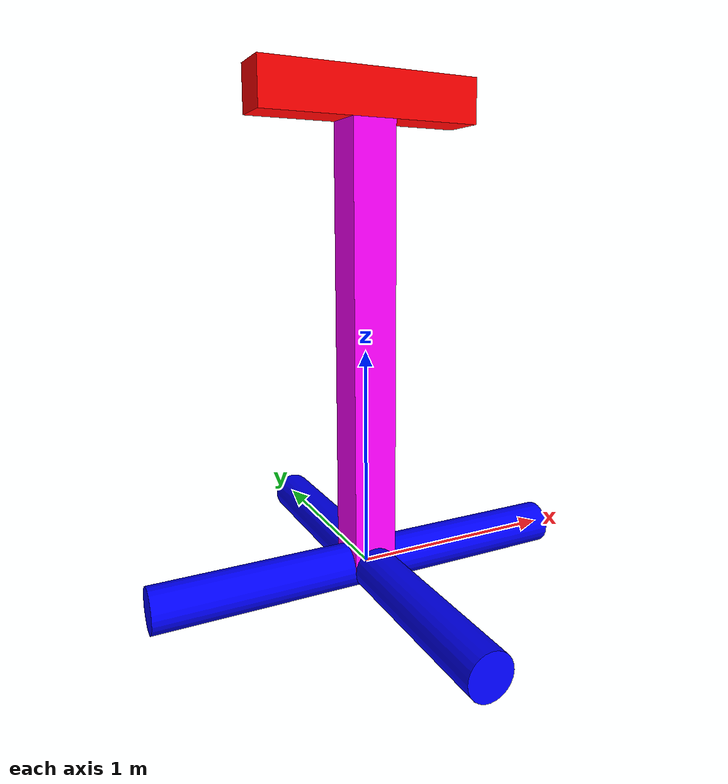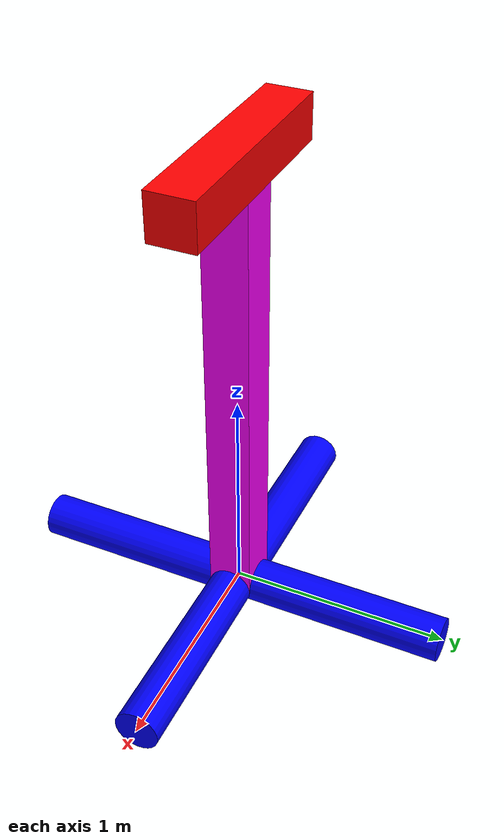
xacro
<?xml version="1.0"?>
<robot xmlns:xacro="http://www.ros.org/wiki/xacro"  name="robot">
    <!-- This will include all the contents of example_include.xacro first -->
    <xacro:include filename="colors.xacro" />
    <xacro:include filename="inertial.xacro" />

    <!-- This first link called "world" is empty -->
    <link name="world"></link>

    <!-- A simple fixed joint from our empty world link, to our base.
         The base origin is offset from the world origin. -->
    <joint name="cylinder1" type="fixed">
        <origin xyz="0 0 0" rpy="0 0 0"/>
        <parent link="world"/>
        <child link="cylinder1_link"/>
    </joint>

    <xacro:property name="cylinder_length" value="2" />
    <xacro:property name="cylinder_radius" value="0.1" />

    <link name="cylinder1_link">
        <visual>
            <origin xyz="0 0 0" rpy="0 ${pi/2} 0"/>
            <geometry>
                <cylinder length="${cylinder_length}" radius="${cylinder_radius}" />
            </geometry>
            <material name="blue" />
        </visual>
        <collision>
            <origin xyz="0 0 0" rpy="0 ${pi/2} 0"/>
            <geometry>
                <cylinder length="${cylinder_length}" radius="${cylinder_radius}" />
            </geometry>
        </collision>
        <xacro:inertial_cylinder mass="1.0" length="${cylinder_length}"
            radius="${cylinder_radius}">
            <origin xyz="0 0 0" rpy="0 ${pi/2} 0"/>
        </xacro:inertial_cylinder>
    </link>

    <joint name="cylinder2" type="fixed">
        <origin xyz="0 0 0" rpy="0 0 0"/>
        <parent link="world"/>
        <child link="cylinder2_link"/>
    </joint>

    <link name="cylinder2_link">
        <visual>
            <origin xyz="0 0 0" rpy="${pi/2} ${pi/2} 0"/>
            <geometry>
                <cylinder length="${cylinder_length}" radius="${cylinder_radius}" />
            </geometry>
            <material name="blue" />
        </visual>
        <collision>
            <origin xyz="0 0 0" rpy="${pi/2} ${pi/2} 0"/>
            <geometry>
                <cylinder length="${cylinder_length}" radius="${cylinder_radius}" />
            </geometry>
        </collision>
        <xacro:inertial_cylinder mass="1.0" length="${cylinder_length}"
            radius="${cylinder_radius}">
            <origin xyz="0 0 0" rpy="${pi/2} ${pi/2} 0"/>
        </xacro:inertial_cylinder>
    </link>

    <joint name="shaft" type="revolute">
        <origin xyz="0 0 0" rpy="0 0 0"/>
        <parent link="world"/>
        <child link="shaft_link"/>
        <axis xyz="0 0 1"/>
        <limit lower="0" upper="${2*pi}" velocity="100" effort="100"/>
    </joint>

    <xacro:property name="shaft_side_length" value="0.2" />
    <xacro:property name="shaft_height" value="2"/>

    <link name="shaft_link">
        <visual>
            <origin xyz="0 0 ${shaft_height/2}" rpy="0 0 0"/>
            <geometry>
                <box size="${shaft_side_length} ${shaft_side_length} ${shaft_height}"/>
            </geometry>
            <material name="magenta"/>
        </visual>
        <collision>
            <origin xyz="0 0 ${shaft_height/2}" rpy="0 0 0"/>
            <geometry>
                <box size="${shaft_side_length} ${shaft_side_length} ${shaft_height}"/>
            </geometry>
        </collision>
        <xacro:inertial_box mass="0.1" x="${shaft_side_length/2}" y="${shaft_side_length/2}" z="${shaft_height/2}">
            <origin xyz="0.0 0 0" rpy="0 0 0"/>
        </xacro:inertial_box>
    </link>

    <xacro:property name="topshaft_side_length" value="0.2" />
    <xacro:property name="topshaft_height" value="1"/>

    <joint name="topshaft" type="prismatic">
        <origin xyz="0 0 ${shaft_height+(topshaft_side_length/2)}" rpy="0 0 0"/>
        <parent link="shaft_link"/>
        <child link="topshaft_link"/>
        <axis xyz="1 0 0"/>
        <limit lower="${-(topshaft_height/2-0.2)}" upper="${topshaft_height/2-0.2}" velocity="100" effort="100"/>
    </joint>

    <link name="topshaft_link">
        <visual>
            <origin xyz="0 0 0" rpy="0 ${pi/2} 0"/>
            <geometry>
                <box size="${topshaft_side_length} ${topshaft_side_length} ${topshaft_height}"/>
            </geometry>
            <material name="red"/>
        </visual>
        <collision>
            <origin xyz="0 0 ${shaft_height}" rpy="0 ${pi/2} 0"/>
            <geometry>
                <box size="${topshaft_side_length} ${topshaft_side_length} ${topshaft_height}"/>
            </geometry>
        </collision>
        <xacro:inertial_box mass="0.1" x="${topshaft_side_length/2}" y="${topshaft_side_length/2}" z="${topshaft_height/2}">
            <origin xyz="0.0 0 0" rpy="0 ${pi/2} 0"/>
        </xacro:inertial_box>
    </link>
</robot>

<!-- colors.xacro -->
<robot xmlns:xacro="http://www.ros.org/wiki/xacro" >
    <!-- Red -->
    <material name="red">
        <color rgba="1 0 0 1"/>
    </material>
    <!-- Green -->
    <material name="green">
        <color rgba="0 1 0 1"/>
    </material>
    <!-- Blue -->
    <material name="blue">
        <color rgba="0 0 1 1"/>
    </material>
    <!-- Yellow -->
    <material name="yellow">
        <color rgba="1 1 0 1"/>
    </material>
    <!-- Magenta -->
    <material name="magenta">
        <color rgba="1 0 1 1"/>
    </material>
    <!-- Cyan -->
    <material name="cyan">
        <color rgba="0 1 1 1"/>
    </material>
    <!-- White -->
    <material name="white">
        <color rgba="1 1 1 1"/>
    </material>
</robot>
